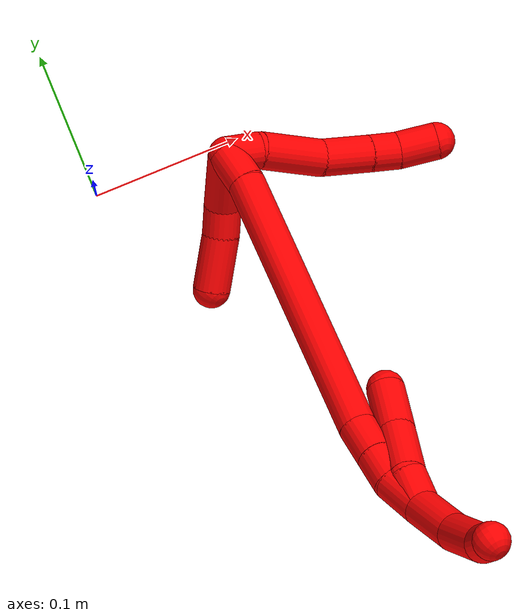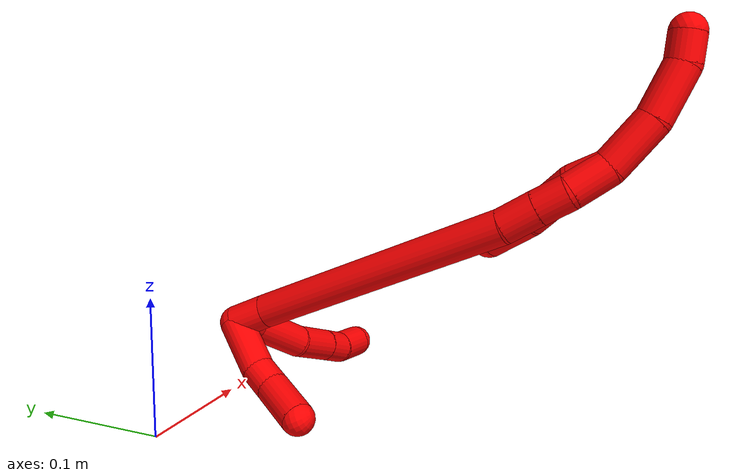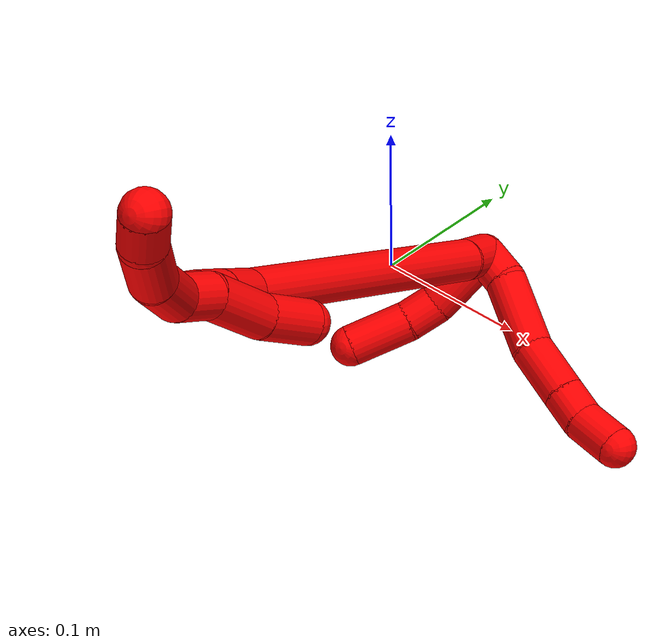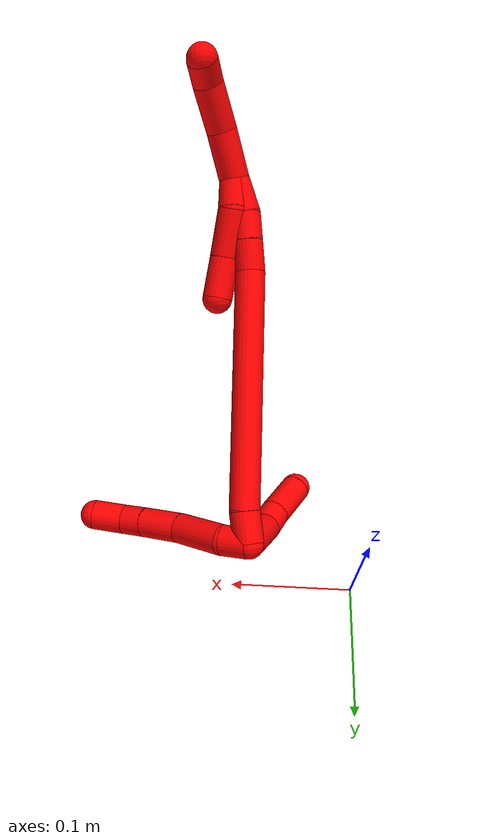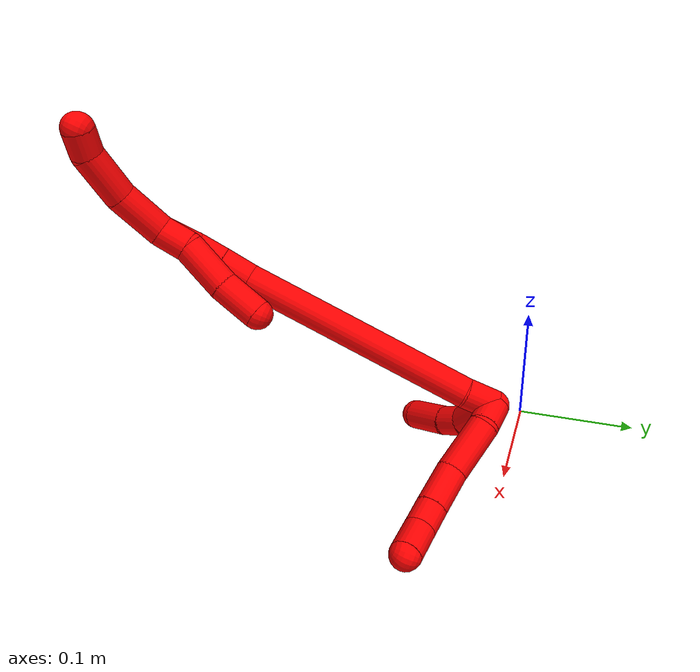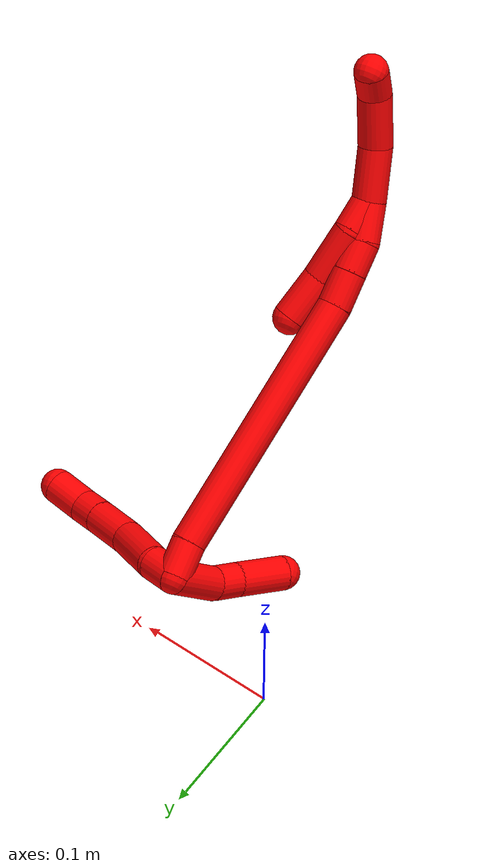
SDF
<sdf version="1.7">
 <world name="default">
  <model name="photoneo_s_sensor">
   <static>1</static>
   <pose>0 0 2 1.57079 1.57079 3.14159</pose>
   <link name="link">
    <inertial><mass>0.1</mass></inertial>
    <sensor name="sensor" type="depth">
     <update_rate>30</update_rate>
     <camera>
      <horizontal_fov>1.22</horizontal_fov>
      <image><width>1920</width><height>1200</height><format>B8G8R8</format></image>
      <clip><near>0.1</near><far>4</far></clip>
      <depth_camera><output>points</output></depth_camera>
     </camera>
     <plugin name="camera_plugin" filename="libgazebo_ros_depth_camera.so">
      <baseline>0.2</baseline>
      <alwaysOn>1</alwaysOn>
      <updateRate>0.0</updateRate>
      <cameraName>camera_ir</cameraName>
      <imageTopicName>/camera/color/image_raw</imageTopicName>
      <cameraInfoTopicName>/camera/color/camera_info</cameraInfoTopicName>
      <depthImageTopicName>/camera/depth/image_raw</depthImageTopicName>
      <depthImageCameraInfoTopicName>/camera/depth/camera_info</depthImageCameraInfoTopicName>
      <pointCloudTopicName>/camera/depth/points</pointCloudTopicName>
      <frameName>fr_optical</frameName>
      <pointCloudCutoff>0.1</pointCloudCutoff>
      <pointCloudCutoffMax>2.0</pointCloudCutoffMax>
      <distortionK1>0</distortionK1>
      <distortionK2>0</distortionK2>
      <distortionK3>0</distortionK3>
      <distortionT1>0</distortionT1>
      <distortionT2>0</distortionT2>
      <CxPrime>0</CxPrime>
      <Cx>0</Cx>
      <Cy>0</Cy>
      <focalLength>0</focalLength>
      <hackBaseline>0</hackBaseline>
     </plugin>
    </sensor>
   </link>
  </model>
  <model name="bin">
   <static>1</static>
   <link name="bottom">
    <collision name="collision-bottom">
     <pose>0 0 -0.01 0 -0 0</pose>
     <geometry><box><size>0.8 0.6 0.02</size></box></geometry>
     <surface>
      <friction><ode><mu>100</mu><mu2>100</mu2></ode></friction>
      <contact><collide_bitmask>65535</collide_bitmask></contact>
     </surface>
    </collision>
   </link>
   <link name="west_wall">
    <collision name="collision-west_wall">
     <pose>-0.41 0 0.1 0 -0 0</pose>
     <geometry><box><size>0.02 0.6 0.2</size></box></geometry>
     <surface>
      <friction><ode><mu>100</mu><mu2>100</mu2></ode></friction>
      <contact><collide_bitmask>65535</collide_bitmask></contact>
     </surface>
    </collision>
   </link>
   <link name="east_wall">
    <collision name="collision-east_wall">
     <pose>0.41 0 0.1 0 -0 0</pose>
     <geometry><box><size>0.02 0.6 0.2</size></box></geometry>
     <surface>
      <friction><ode><mu>100</mu><mu2>100</mu2></ode></friction>
      <contact><collide_bitmask>65535</collide_bitmask></contact>
     </surface>
    </collision>
   </link>
   <link name="south_wall">
    <collision name="collision-south_wall">
     <pose>0 -0.31 0.1 0 -0 0</pose>
     <geometry><box><size>0.8 0.02 0.2</size></box></geometry>
     <surface>
      <friction><ode><mu>100</mu><mu2>100</mu2></ode></friction>
      <contact><collide_bitmask>65535</collide_bitmask></contact>
     </surface>
    </collision>
   </link>
   <link name="north_wall">
    <collision name="collision-north_wall">
     <pose>0 0.31 0.1 0 -0 0</pose>
     <geometry><box><size>0.8 0.02 0.2</size></box></geometry>
     <surface>
      <friction><ode><mu>100</mu><mu2>100</mu2></ode></friction>
      <contact><collide_bitmask>65535</collide_bitmask></contact>
     </surface>
    </collision>
   </link>
  </model>
  <model name="2">
   <static>0</static>
   <link name="2">
    <collision name="collision-cylinder-e_1_2_8">
     <pose>0.011017 -6e-06 0.002296 0.002676 1.36536 0.002176</pose>
     <geometry><cylinder><radius>0.0125</radius><length>0.022508</length></cylinder></geometry>
     <surface>
      <friction><ode><mu>1.16</mu><mu2>1.16</mu2><slip1>0</slip1><slip2>0</slip2></ode></friction>
      <contact><ode><kp>1e+06</kp><kd>1</kd><max_vel>0</max_vel><min_depth>0.001</min_depth></ode></contact>
     </surface>
    </collision>
    <visual name="visual-cylinder-e_1_2_8">
     <pose>0.011017 -6e-06 0.002296 0.002676 1.36536 0.002176</pose>
     <geometry><cylinder><radius>0.0125</radius><length>0.022508</length></cylinder></geometry>
     <material><ambient>1 0 0 1</ambient></material>
    </visual>
    <collision name="collision-cylinder-e_2_8_9">
     <pose>0.043105 -0.00691 0.010618 0.852707 1.16074 0.578928</pose>
     <geometry><cylinder><radius>0.0125</radius><length>0.045949</length></cylinder></geometry>
     <surface>
      <friction><ode><mu>1.16</mu><mu2>1.16</mu2><slip1>0</slip1><slip2>0</slip2></ode></friction>
      <contact><ode><kp>1e+06</kp><kd>1</kd><max_vel>0</max_vel><min_depth>0.001</min_depth></ode></contact>
     </surface>
    </collision>
    <visual name="visual-cylinder-e_2_8_9">
     <pose>0.043105 -0.00691 0.010618 0.852707 1.16074 0.578928</pose>
     <geometry><cylinder><radius>0.0125</radius><length>0.045949</length></cylinder></geometry>
     <material><ambient>1 0 0 1</ambient></material>
    </visual>
    <collision name="collision-cylinder-e_3_9_10">
     <pose>0.080798 -0.014922 0.020553 0.27797 1.33095 0.218722</pose>
     <geometry><cylinder><radius>0.0125</radius><length>0.034227</length></cylinder></geometry>
     <surface>
      <friction><ode><mu>1.16</mu><mu2>1.16</mu2><slip1>0</slip1><slip2>0</slip2></ode></friction>
      <contact><ode><kp>1e+06</kp><kd>1</kd><max_vel>0</max_vel><min_depth>0.001</min_depth></ode></contact>
     </surface>
    </collision>
    <visual name="visual-cylinder-e_3_9_10">
     <pose>0.080798 -0.014922 0.020553 0.27797 1.33095 0.218722</pose>
     <geometry><cylinder><radius>0.0125</radius><length>0.034227</length></cylinder></geometry>
     <material><ambient>1 0 0 1</ambient></material>
    </visual>
    <collision name="collision-cylinder-e_4_10_11">
     <pose>0.107291 -0.016714 0.026594 0.307209 1.34795 0.246081</pose>
     <geometry><cylinder><radius>0.0125</radius><length>0.020238</length></cylinder></geometry>
     <surface>
      <friction><ode><mu>1.16</mu><mu2>1.16</mu2><slip1>0</slip1><slip2>0</slip2></ode></friction>
      <contact><ode><kp>1e+06</kp><kd>1</kd><max_vel>0</max_vel><min_depth>0.001</min_depth></ode></contact>
     </surface>
    </collision>
    <visual name="visual-cylinder-e_4_10_11">
     <pose>0.107291 -0.016714 0.026594 0.307209 1.34795 0.246081</pose>
     <geometry><cylinder><radius>0.0125</radius><length>0.020238</length></cylinder></geometry>
     <material><ambient>1 0 0 1</ambient></material>
    </visual>
    <collision name="collision-cylinder-e_5_11_6">
     <pose>0.129858 -0.01429 0.032253 -0.721093 1.21655 -0.513499</pose>
     <geometry><cylinder><radius>0.0125</radius><length>0.027077</length></cylinder></geometry>
     <surface>
      <friction><ode><mu>1.16</mu><mu2>1.16</mu2><slip1>0</slip1><slip2>0</slip2></ode></friction>
      <contact><ode><kp>1e+06</kp><kd>1</kd><max_vel>0</max_vel><min_depth>0.001</min_depth></ode></contact>
     </surface>
    </collision>
    <visual name="visual-cylinder-e_5_11_6">
     <pose>0.129858 -0.01429 0.032253 -0.721093 1.21655 -0.513499</pose>
     <geometry><cylinder><radius>0.0125</radius><length>0.027077</length></cylinder></geometry>
     <material><ambient>1 0 0 1</ambient></material>
    </visual>
    <collision name="collision-cylinder-e_1_2_12">
     <pose>-0.000642 -0.020463 0.004375 1.36016 -0.030655 -0.024794</pose>
     <geometry><cylinder><radius>0.0125</radius><length>0.04187</length></cylinder></geometry>
     <surface>
      <friction><ode><mu>1.16</mu><mu2>1.16</mu2><slip1>0</slip1><slip2>0</slip2></ode></friction>
      <contact><ode><kp>1e+06</kp><kd>1</kd><max_vel>0</max_vel><min_depth>0.001</min_depth></ode></contact>
     </surface>
    </collision>
    <visual name="visual-cylinder-e_1_2_12">
     <pose>-0.000642 -0.020463 0.004375 1.36016 -0.030655 -0.024794</pose>
     <geometry><cylinder><radius>0.0125</radius><length>0.04187</length></cylinder></geometry>
     <material><ambient>1 0 0 1</ambient></material>
    </visual>
    <collision name="collision-cylinder-e_2_12_13">
     <pose>-0.003349 -0.049759 0.013718 1.05852 -0.201064 -0.117867</pose>
     <geometry><cylinder><radius>0.0125</radius><length>0.020684</length></cylinder></geometry>
     <surface>
      <friction><ode><mu>1.16</mu><mu2>1.16</mu2><slip1>0</slip1><slip2>0</slip2></ode></friction>
      <contact><ode><kp>1e+06</kp><kd>1</kd><max_vel>0</max_vel><min_depth>0.001</min_depth></ode></contact>
     </surface>
    </collision>
    <visual name="visual-cylinder-e_2_12_13">
     <pose>-0.003349 -0.049759 0.013718 1.05852 -0.201064 -0.117867</pose>
     <geometry><cylinder><radius>0.0125</radius><length>0.020684</length></cylinder></geometry>
     <material><ambient>1 0 0 1</ambient></material>
    </visual>
    <collision name="collision-cylinder-e_3_13_5">
     <pose>-0.011797 -0.07349 0.028056 1.00934 -0.347892 -0.193525</pose>
     <geometry><cylinder><radius>0.0125</radius><length>0.037445</length></cylinder></geometry>
     <surface>
      <friction><ode><mu>1.16</mu><mu2>1.16</mu2><slip1>0</slip1><slip2>0</slip2></ode></friction>
      <contact><ode><kp>1e+06</kp><kd>1</kd><max_vel>0</max_vel><min_depth>0.001</min_depth></ode></contact>
     </surface>
    </collision>
    <visual name="visual-cylinder-e_3_13_5">
     <pose>-0.011797 -0.07349 0.028056 1.00934 -0.347892 -0.193525</pose>
     <geometry><cylinder><radius>0.0125</radius><length>0.037445</length></cylinder></geometry>
     <material><ambient>1 0 0 1</ambient></material>
    </visual>
    <collision name="collision-cylinder-e_1_2_14">
     <pose>0.000109 -0.00019 0.012938 0.01465 0.008389 6.1e-05</pose>
     <geometry><cylinder><radius>0.0125</radius><length>0.02588</length></cylinder></geometry>
     <surface>
      <friction><ode><mu>1.16</mu><mu2>1.16</mu2><slip1>0</slip1><slip2>0</slip2></ode></friction>
      <contact><ode><kp>1e+06</kp><kd>1</kd><max_vel>0</max_vel><min_depth>0.001</min_depth></ode></contact>
     </surface>
    </collision>
    <visual name="visual-cylinder-e_1_2_14">
     <pose>0.000109 -0.00019 0.012938 0.01465 0.008389 6.1e-05</pose>
     <geometry><cylinder><radius>0.0125</radius><length>0.02588</length></cylinder></geometry>
     <material><ambient>1 0 0 1</ambient></material>
    </visual>
    <collision name="collision-cylinder-e_2_14_15">
     <pose>-0.012531 -0.008147 0.122568 0.080162 -0.130673 -0.005248</pose>
     <geometry><cylinder><radius>0.0125</radius><length>0.195674</length></cylinder></geometry>
     <surface>
      <friction><ode><mu>1.16</mu><mu2>1.16</mu2><slip1>0</slip1><slip2>0</slip2></ode></friction>
      <contact><ode><kp>1e+06</kp><kd>1</kd><max_vel>0</max_vel><min_depth>0.001</min_depth></ode></contact>
     </surface>
    </collision>
    <visual name="visual-cylinder-e_2_14_15">
     <pose>-0.012531 -0.008147 0.122568 0.080162 -0.130673 -0.005248</pose>
     <geometry><cylinder><radius>0.0125</radius><length>0.195674</length></cylinder></geometry>
     <material><ambient>1 0 0 1</ambient></material>
    </visual>
    <collision name="collision-cylinder-e_3_15_16">
     <pose>-0.026337 -0.014866 0.232238 -0.080567 -0.081038 0.003268</pose>
     <geometry><cylinder><radius>0.0125</radius><length>0.026128</length></cylinder></geometry>
     <surface>
      <friction><ode><mu>1.16</mu><mu2>1.16</mu2><slip1>0</slip1><slip2>0</slip2></ode></friction>
      <contact><ode><kp>1e+06</kp><kd>1</kd><max_vel>0</max_vel><min_depth>0.001</min_depth></ode></contact>
     </surface>
    </collision>
    <visual name="visual-cylinder-e_3_15_16">
     <pose>-0.026337 -0.014866 0.232238 -0.080567 -0.081038 0.003268</pose>
     <geometry><cylinder><radius>0.0125</radius><length>0.026128</length></cylinder></geometry>
     <material><ambient>1 0 0 1</ambient></material>
    </visual>
    <collision name="collision-cylinder-e_4_16_17">
     <pose>-0.028233 -0.01309 0.256718 -0.063304 -0.072631 0.002301</pose>
     <geometry><cylinder><radius>0.0125</radius><length>0.023108</length></cylinder></geometry>
     <surface>
      <friction><ode><mu>1.16</mu><mu2>1.16</mu2><slip1>0</slip1><slip2>0</slip2></ode></friction>
      <contact><ode><kp>1e+06</kp><kd>1</kd><max_vel>0</max_vel><min_depth>0.001</min_depth></ode></contact>
     </surface>
    </collision>
    <visual name="visual-cylinder-e_4_16_17">
     <pose>-0.028233 -0.01309 0.256718 -0.063304 -0.072631 0.002301</pose>
     <geometry><cylinder><radius>0.0125</radius><length>0.023108</length></cylinder></geometry>
     <material><ambient>1 0 0 1</ambient></material>
    </visual>
    <collision name="collision-cylinder-e_5_17_1">
     <pose>-0.027194 -0.009122 0.282335 -0.225533 0.128928 -0.014621</pose>
     <geometry><cylinder><radius>0.0125</radius><length>0.029209</length></cylinder></geometry>
     <surface>
      <friction><ode><mu>1.16</mu><mu2>1.16</mu2><slip1>0</slip1><slip2>0</slip2></ode></friction>
      <contact><ode><kp>1e+06</kp><kd>1</kd><max_vel>0</max_vel><min_depth>0.001</min_depth></ode></contact>
     </surface>
    </collision>
    <visual name="visual-cylinder-e_5_17_1">
     <pose>-0.027194 -0.009122 0.282335 -0.225533 0.128928 -0.014621</pose>
     <geometry><cylinder><radius>0.0125</radius><length>0.029209</length></cylinder></geometry>
     <material><ambient>1 0 0 1</ambient></material>
    </visual>
    <collision name="collision-cylinder-e_1_1_18">
     <pose>-0.025578 0.00319 0.314405 -0.467926 -0.013046 0.003109</pose>
     <geometry><cylinder><radius>0.0125</radius><length>0.040234</length></cylinder></geometry>
     <surface>
      <friction><ode><mu>1.16</mu><mu2>1.16</mu2><slip1>0</slip1><slip2>0</slip2></ode></friction>
      <contact><ode><kp>1e+06</kp><kd>1</kd><max_vel>0</max_vel><min_depth>0.001</min_depth></ode></contact>
     </surface>
    </collision>
    <visual name="visual-cylinder-e_1_1_18">
     <pose>-0.025578 0.00319 0.314405 -0.467926 -0.013046 0.003109</pose>
     <geometry><cylinder><radius>0.0125</radius><length>0.040234</length></cylinder></geometry>
     <material><ambient>1 0 0 1</ambient></material>
    </visual>
    <collision name="collision-cylinder-e_2_18_19">
     <pose>-0.02692 0.025194 0.347035 -0.722235 -0.055128 0.020825</pose>
     <geometry><cylinder><radius>0.0125</radius><length>0.039181</length></cylinder></geometry>
     <surface>
      <friction><ode><mu>1.16</mu><mu2>1.16</mu2><slip1>0</slip1><slip2>0</slip2></ode></friction>
      <contact><ode><kp>1e+06</kp><kd>1</kd><max_vel>0</max_vel><min_depth>0.001</min_depth></ode></contact>
     </surface>
    </collision>
    <visual name="visual-cylinder-e_2_18_19">
     <pose>-0.02692 0.025194 0.347035 -0.722235 -0.055128 0.020825</pose>
     <geometry><cylinder><radius>0.0125</radius><length>0.039181</length></cylinder></geometry>
     <material><ambient>1 0 0 1</ambient></material>
    </visual>
    <collision name="collision-cylinder-e_3_19_4">
     <pose>-0.029918 0.046843 0.366835 -1.03955 -0.187427 0.107469</pose>
     <geometry><cylinder><radius>0.0125</radius><length>0.020585</length></cylinder></geometry>
     <surface>
      <friction><ode><mu>1.16</mu><mu2>1.16</mu2><slip1>0</slip1><slip2>0</slip2></ode></friction>
      <contact><ode><kp>1e+06</kp><kd>1</kd><max_vel>0</max_vel><min_depth>0.001</min_depth></ode></contact>
     </surface>
    </collision>
    <visual name="visual-cylinder-e_3_19_4">
     <pose>-0.029918 0.046843 0.366835 -1.03955 -0.187427 0.107469</pose>
     <geometry><cylinder><radius>0.0125</radius><length>0.020585</length></cylinder></geometry>
     <material><ambient>1 0 0 1</ambient></material>
    </visual>
    <collision name="collision-cylinder-e_1_1_20">
     <pose>-0.023318 -0.005387 0.284157 -3.10125 0.160941 -2.65137</pose>
     <geometry><cylinder><radius>0.0125</radius><length>0.024932</length></cylinder></geometry>
     <surface>
      <friction><ode><mu>1.16</mu><mu2>1.16</mu2><slip1>0</slip1><slip2>0</slip2></ode></friction>
      <contact><ode><kp>1e+06</kp><kd>1</kd><max_vel>0</max_vel><min_depth>0.001</min_depth></ode></contact>
     </surface>
    </collision>
    <visual name="visual-cylinder-e_1_1_20">
     <pose>-0.023318 -0.005387 0.284157 -3.10125 0.160941 -2.65137</pose>
     <geometry><cylinder><radius>0.0125</radius><length>0.024932</length></cylinder></geometry>
     <material><ambient>1 0 0 1</ambient></material>
    </visual>
    <collision name="collision-cylinder-e_2_20_21">
     <pose>-0.01378 -0.008465 0.253482 2.94952 0.382861 2.21902</pose>
     <geometry><cylinder><radius>0.0125</radius><length>0.040371</length></cylinder></geometry>
     <surface>
      <friction><ode><mu>1.16</mu><mu2>1.16</mu2><slip1>0</slip1><slip2>0</slip2></ode></friction>
      <contact><ode><kp>1e+06</kp><kd>1</kd><max_vel>0</max_vel><min_depth>0.001</min_depth></ode></contact>
     </surface>
    </collision>
    <visual name="visual-cylinder-e_2_20_21">
     <pose>-0.01378 -0.008465 0.253482 2.94952 0.382861 2.21902</pose>
     <geometry><cylinder><radius>0.0125</radius><length>0.040371</length></cylinder></geometry>
     <material><ambient>1 0 0 1</ambient></material>
    </visual>
    <collision name="collision-cylinder-e_3_21_3">
     <pose>-0.000639 -0.01205 0.218683 3.14093 0.328667 3.13758</pose>
     <geometry><cylinder><radius>0.0125</radius><length>0.034697</length></cylinder></geometry>
     <surface>
      <friction><ode><mu>1.16</mu><mu2>1.16</mu2><slip1>0</slip1><slip2>0</slip2></ode></friction>
      <contact><ode><kp>1e+06</kp><kd>1</kd><max_vel>0</max_vel><min_depth>0.001</min_depth></ode></contact>
     </surface>
    </collision>
    <visual name="visual-cylinder-e_3_21_3">
     <pose>-0.000639 -0.01205 0.218683 3.14093 0.328667 3.13758</pose>
     <geometry><cylinder><radius>0.0125</radius><length>0.034697</length></cylinder></geometry>
     <material><ambient>1 0 0 1</ambient></material>
    </visual>
    <collision name="collision-sphere-3">
     <pose>0.00496 -0.012061 0.202263 0 -0 0</pose>
     <geometry><sphere><radius>0.0125</radius></sphere></geometry>
     <surface>
      <friction><ode><mu>1.16</mu><mu2>1.16</mu2><slip1>0</slip1><slip2>0</slip2></ode></friction>
      <contact><ode><kp>1e+06</kp><kd>1</kd><max_vel>0</max_vel><min_depth>0.001</min_depth></ode></contact>
     </surface>
    </collision>
    <visual name="visual-sphere-3">
     <pose>0.00496 -0.012061 0.202263 0 -0 0</pose>
     <geometry><sphere><radius>0.0125</radius></sphere></geometry>
     <material><ambient>1 0 0 1</ambient></material>
    </visual>
    <collision name="collision-sphere-21">
     <pose>-0.006239 -0.012039 0.235103 0 -0 0</pose>
     <geometry><sphere><radius>0.0125</radius></sphere></geometry>
     <surface>
      <friction><ode><mu>1.16</mu><mu2>1.16</mu2><slip1>0</slip1><slip2>0</slip2></ode></friction>
      <contact><ode><kp>1e+06</kp><kd>1</kd><max_vel>0</max_vel><min_depth>0.001</min_depth></ode></contact>
     </surface>
    </collision>
    <visual name="visual-sphere-21">
     <pose>-0.006239 -0.012039 0.235103 0 -0 0</pose>
     <geometry><sphere><radius>0.0125</radius></sphere></geometry>
     <material><ambient>1 0 0 1</ambient></material>
    </visual>
    <collision name="collision-sphere-20">
     <pose>-0.021321 -0.00489 0.271862 0 -0 0</pose>
     <geometry><sphere><radius>0.0125</radius></sphere></geometry>
     <surface>
      <friction><ode><mu>1.16</mu><mu2>1.16</mu2><slip1>0</slip1><slip2>0</slip2></ode></friction>
      <contact><ode><kp>1e+06</kp><kd>1</kd><max_vel>0</max_vel><min_depth>0.001</min_depth></ode></contact>
     </surface>
    </collision>
    <visual name="visual-sphere-20">
     <pose>-0.021321 -0.00489 0.271862 0 -0 0</pose>
     <geometry><sphere><radius>0.0125</radius></sphere></geometry>
     <material><ambient>1 0 0 1</ambient></material>
    </visual>
    <collision name="collision-sphere-4">
     <pose>-0.031835 0.055561 0.371958 0 -0 0</pose>
     <geometry><sphere><radius>0.0125</radius></sphere></geometry>
     <surface>
      <friction><ode><mu>1.16</mu><mu2>1.16</mu2><slip1>0</slip1><slip2>0</slip2></ode></friction>
      <contact><ode><kp>1e+06</kp><kd>1</kd><max_vel>0</max_vel><min_depth>0.001</min_depth></ode></contact>
     </surface>
    </collision>
    <visual name="visual-sphere-4">
     <pose>-0.031835 0.055561 0.371958 0 -0 0</pose>
     <geometry><sphere><radius>0.0125</radius></sphere></geometry>
     <material><ambient>1 0 0 1</ambient></material>
    </visual>
    <collision name="collision-sphere-6">
     <pose>0.142556 -0.011189 0.03578 0 -0 0</pose>
     <geometry><sphere><radius>0.0125</radius></sphere></geometry>
     <surface>
      <friction><ode><mu>1.16</mu><mu2>1.16</mu2><slip1>0</slip1><slip2>0</slip2></ode></friction>
      <contact><ode><kp>1e+06</kp><kd>1</kd><max_vel>0</max_vel><min_depth>0.001</min_depth></ode></contact>
     </surface>
    </collision>
    <visual name="visual-sphere-6">
     <pose>0.142556 -0.011189 0.03578 0 -0 0</pose>
     <geometry><sphere><radius>0.0125</radius></sphere></geometry>
     <material><ambient>1 0 0 1</ambient></material>
    </visual>
    <collision name="collision-sphere-11">
     <pose>0.11716 -0.017391 0.028726 0 -0 0</pose>
     <geometry><sphere><radius>0.0125</radius></sphere></geometry>
     <surface>
      <friction><ode><mu>1.16</mu><mu2>1.16</mu2><slip1>0</slip1><slip2>0</slip2></ode></friction>
      <contact><ode><kp>1e+06</kp><kd>1</kd><max_vel>0</max_vel><min_depth>0.001</min_depth></ode></contact>
     </surface>
    </collision>
    <visual name="visual-sphere-11">
     <pose>0.11716 -0.017391 0.028726 0 -0 0</pose>
     <geometry><sphere><radius>0.0125</radius></sphere></geometry>
     <material><ambient>1 0 0 1</ambient></material>
    </visual>
    <collision name="collision-sphere-10">
     <pose>0.097422 -0.016038 0.024462 0 -0 0</pose>
     <geometry><sphere><radius>0.0125</radius></sphere></geometry>
     <surface>
      <friction><ode><mu>1.16</mu><mu2>1.16</mu2><slip1>0</slip1><slip2>0</slip2></ode></friction>
      <contact><ode><kp>1e+06</kp><kd>1</kd><max_vel>0</max_vel><min_depth>0.001</min_depth></ode></contact>
     </surface>
    </collision>
    <visual name="visual-sphere-10">
     <pose>0.097422 -0.016038 0.024462 0 -0 0</pose>
     <geometry><sphere><radius>0.0125</radius></sphere></geometry>
     <material><ambient>1 0 0 1</ambient></material>
    </visual>
    <collision name="collision-sphere-9">
     <pose>0.064175 -0.013807 0.016644 0 -0 0</pose>
     <geometry><sphere><radius>0.0125</radius></sphere></geometry>
     <surface>
      <friction><ode><mu>1.16</mu><mu2>1.16</mu2><slip1>0</slip1><slip2>0</slip2></ode></friction>
      <contact><ode><kp>1e+06</kp><kd>1</kd><max_vel>0</max_vel><min_depth>0.001</min_depth></ode></contact>
     </surface>
    </collision>
    <visual name="visual-sphere-9">
     <pose>0.064175 -0.013807 0.016644 0 -0 0</pose>
     <geometry><sphere><radius>0.0125</radius></sphere></geometry>
     <material><ambient>1 0 0 1</ambient></material>
    </visual>
    <collision name="collision-sphere-2">
     <geometry><sphere><radius>0.0125</radius></sphere></geometry>
     <surface>
      <friction><ode><mu>1.16</mu><mu2>1.16</mu2><slip1>0</slip1><slip2>0</slip2></ode></friction>
      <contact><ode><kp>1e+06</kp><kd>1</kd><max_vel>0</max_vel><min_depth>0.001</min_depth></ode></contact>
     </surface>
    </collision>
    <visual name="visual-sphere-2">
     <geometry><sphere><radius>0.0125</radius></sphere></geometry>
     <material><ambient>1 0 0 1</ambient></material>
    </visual>
    <collision name="collision-sphere-19">
     <pose>-0.028 0.038125 0.361712 0 -0 0</pose>
     <geometry><sphere><radius>0.0125</radius></sphere></geometry>
     <surface>
      <friction><ode><mu>1.16</mu><mu2>1.16</mu2><slip1>0</slip1><slip2>0</slip2></ode></friction>
      <contact><ode><kp>1e+06</kp><kd>1</kd><max_vel>0</max_vel><min_depth>0.001</min_depth></ode></contact>
     </surface>
    </collision>
    <visual name="visual-sphere-19">
     <pose>-0.028 0.038125 0.361712 0 -0 0</pose>
     <geometry><sphere><radius>0.0125</radius></sphere></geometry>
     <material><ambient>1 0 0 1</ambient></material>
    </visual>
    <collision name="collision-sphere-8">
     <pose>0.022035 -1.2e-05 0.004591 0 -0 0</pose>
     <geometry><sphere><radius>0.0125</radius></sphere></geometry>
     <surface>
      <friction><ode><mu>1.16</mu><mu2>1.16</mu2><slip1>0</slip1><slip2>0</slip2></ode></friction>
      <contact><ode><kp>1e+06</kp><kd>1</kd><max_vel>0</max_vel><min_depth>0.001</min_depth></ode></contact>
     </surface>
    </collision>
    <visual name="visual-sphere-8">
     <pose>0.022035 -1.2e-05 0.004591 0 -0 0</pose>
     <geometry><sphere><radius>0.0125</radius></sphere></geometry>
     <material><ambient>1 0 0 1</ambient></material>
    </visual>
    <collision name="collision-sphere-12">
     <pose>-0.001283 -0.040926 0.00875 0 -0 0</pose>
     <geometry><sphere><radius>0.0125</radius></sphere></geometry>
     <surface>
      <friction><ode><mu>1.16</mu><mu2>1.16</mu2><slip1>0</slip1><slip2>0</slip2></ode></friction>
      <contact><ode><kp>1e+06</kp><kd>1</kd><max_vel>0</max_vel><min_depth>0.001</min_depth></ode></contact>
     </surface>
    </collision>
    <visual name="visual-sphere-12">
     <pose>-0.001283 -0.040926 0.00875 0 -0 0</pose>
     <geometry><sphere><radius>0.0125</radius></sphere></geometry>
     <material><ambient>1 0 0 1</ambient></material>
    </visual>
    <collision name="collision-sphere-13">
     <pose>-0.005414 -0.058591 0.018685 0 -0 0</pose>
     <geometry><sphere><radius>0.0125</radius></sphere></geometry>
     <surface>
      <friction><ode><mu>1.16</mu><mu2>1.16</mu2><slip1>0</slip1><slip2>0</slip2></ode></friction>
      <contact><ode><kp>1e+06</kp><kd>1</kd><max_vel>0</max_vel><min_depth>0.001</min_depth></ode></contact>
     </surface>
    </collision>
    <visual name="visual-sphere-13">
     <pose>-0.005414 -0.058591 0.018685 0 -0 0</pose>
     <geometry><sphere><radius>0.0125</radius></sphere></geometry>
     <material><ambient>1 0 0 1</ambient></material>
    </visual>
    <collision name="collision-sphere-5">
     <pose>-0.01818 -0.088389 0.037427 0 -0 0</pose>
     <geometry><sphere><radius>0.0125</radius></sphere></geometry>
     <surface>
      <friction><ode><mu>1.16</mu><mu2>1.16</mu2><slip1>0</slip1><slip2>0</slip2></ode></friction>
      <contact><ode><kp>1e+06</kp><kd>1</kd><max_vel>0</max_vel><min_depth>0.001</min_depth></ode></contact>
     </surface>
    </collision>
    <visual name="visual-sphere-5">
     <pose>-0.01818 -0.088389 0.037427 0 -0 0</pose>
     <geometry><sphere><radius>0.0125</radius></sphere></geometry>
     <material><ambient>1 0 0 1</ambient></material>
    </visual>
    <collision name="collision-sphere-14">
     <pose>0.000217 -0.000379 0.025876 0 -0 0</pose>
     <geometry><sphere><radius>0.0125</radius></sphere></geometry>
     <surface>
      <friction><ode><mu>1.16</mu><mu2>1.16</mu2><slip1>0</slip1><slip2>0</slip2></ode></friction>
      <contact><ode><kp>1e+06</kp><kd>1</kd><max_vel>0</max_vel><min_depth>0.001</min_depth></ode></contact>
     </surface>
    </collision>
    <visual name="visual-sphere-14">
     <pose>0.000217 -0.000379 0.025876 0 -0 0</pose>
     <geometry><sphere><radius>0.0125</radius></sphere></geometry>
     <material><ambient>1 0 0 1</ambient></material>
    </visual>
    <collision name="collision-sphere-15">
     <pose>-0.02528 -0.015914 0.219259 0 -0 0</pose>
     <geometry><sphere><radius>0.0125</radius></sphere></geometry>
     <surface>
      <friction><ode><mu>1.16</mu><mu2>1.16</mu2><slip1>0</slip1><slip2>0</slip2></ode></friction>
      <contact><ode><kp>1e+06</kp><kd>1</kd><max_vel>0</max_vel><min_depth>0.001</min_depth></ode></contact>
     </surface>
    </collision>
    <visual name="visual-sphere-15">
     <pose>-0.02528 -0.015914 0.219259 0 -0 0</pose>
     <geometry><sphere><radius>0.0125</radius></sphere></geometry>
     <material><ambient>1 0 0 1</ambient></material>
    </visual>
    <collision name="collision-sphere-16">
     <pose>-0.027395 -0.013819 0.245217 0 -0 0</pose>
     <geometry><sphere><radius>0.0125</radius></sphere></geometry>
     <surface>
      <friction><ode><mu>1.16</mu><mu2>1.16</mu2><slip1>0</slip1><slip2>0</slip2></ode></friction>
      <contact><ode><kp>1e+06</kp><kd>1</kd><max_vel>0</max_vel><min_depth>0.001</min_depth></ode></contact>
     </surface>
    </collision>
    <visual name="visual-sphere-16">
     <pose>-0.027395 -0.013819 0.245217 0 -0 0</pose>
     <geometry><sphere><radius>0.0125</radius></sphere></geometry>
     <material><ambient>1 0 0 1</ambient></material>
    </visual>
    <collision name="collision-sphere-17">
     <pose>-0.029072 -0.01236 0.268219 0 -0 0</pose>
     <geometry><sphere><radius>0.0125</radius></sphere></geometry>
     <surface>
      <friction><ode><mu>1.16</mu><mu2>1.16</mu2><slip1>0</slip1><slip2>0</slip2></ode></friction>
      <contact><ode><kp>1e+06</kp><kd>1</kd><max_vel>0</max_vel><min_depth>0.001</min_depth></ode></contact>
     </surface>
    </collision>
    <visual name="visual-sphere-17">
     <pose>-0.029072 -0.01236 0.268219 0 -0 0</pose>
     <geometry><sphere><radius>0.0125</radius></sphere></geometry>
     <material><ambient>1 0 0 1</ambient></material>
    </visual>
    <collision name="collision-sphere-1">
     <pose>-0.025316 -0.005883 0.296452 0 -0 0</pose>
     <geometry><sphere><radius>0.0125</radius></sphere></geometry>
     <surface>
      <friction><ode><mu>1.16</mu><mu2>1.16</mu2><slip1>0</slip1><slip2>0</slip2></ode></friction>
      <contact><ode><kp>1e+06</kp><kd>1</kd><max_vel>0</max_vel><min_depth>0.001</min_depth></ode></contact>
     </surface>
    </collision>
    <visual name="visual-sphere-1">
     <pose>-0.025316 -0.005883 0.296452 0 -0 0</pose>
     <geometry><sphere><radius>0.0125</radius></sphere></geometry>
     <material><ambient>1 0 0 1</ambient></material>
    </visual>
    <collision name="collision-sphere-18">
     <pose>-0.025841 0.012263 0.332358 0 -0 0</pose>
     <geometry><sphere><radius>0.0125</radius></sphere></geometry>
     <surface>
      <friction><ode><mu>1.16</mu><mu2>1.16</mu2><slip1>0</slip1><slip2>0</slip2></ode></friction>
      <contact><ode><kp>1e+06</kp><kd>1</kd><max_vel>0</max_vel><min_depth>0.001</min_depth></ode></contact>
     </surface>
    </collision>
    <visual name="visual-sphere-18">
     <pose>-0.025841 0.012263 0.332358 0 -0 0</pose>
     <geometry><sphere><radius>0.0125</radius></sphere></geometry>
     <material><ambient>1 0 0 1</ambient></material>
    </visual>
    <inertial>
     <pose>0.002267 -0.010083 0.143255 0 -0 0</pose>
     <mass>0.75</mass>
     <inertia>
      <ixx>0.000673</ixx>
      <ixy>0</ixy>
      <ixz>0</ixz>
      <iyy>0.000687</iyy>
      <iyz>0</iyz>
      <izz>0.000147</izz>
     </inertia>
    </inertial>
   </link>
   <pose>0.08794 -0.013828 0.060619 1.08839 0.398256 -0.014162</pose>
  </model>
 </world>
</sdf>
